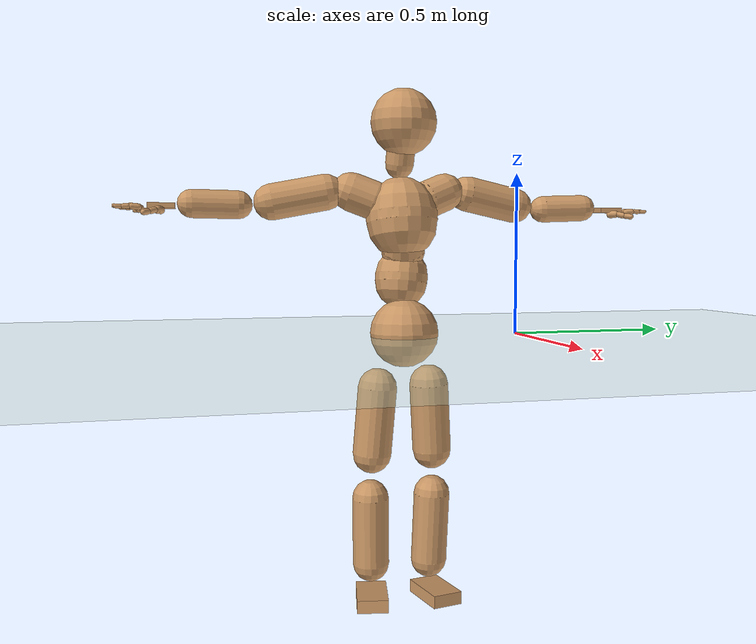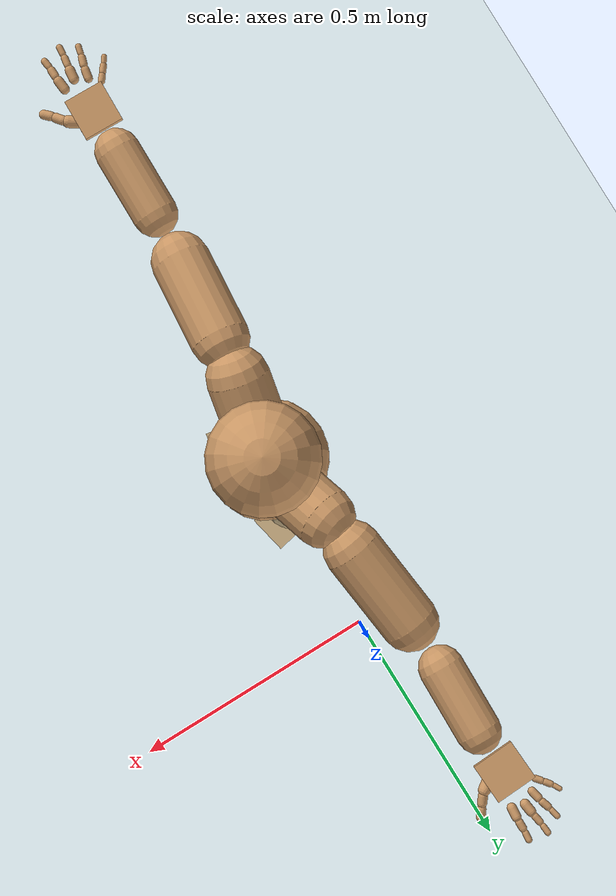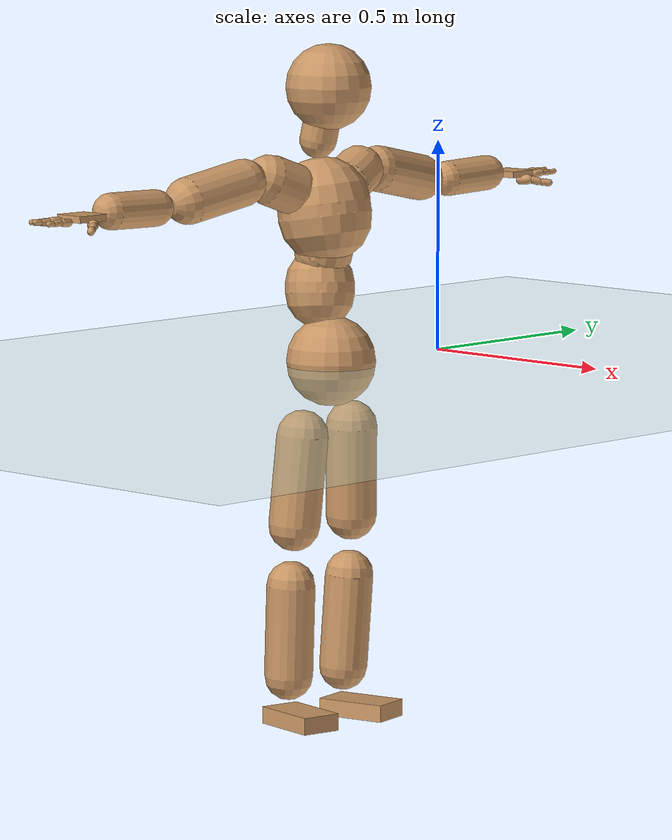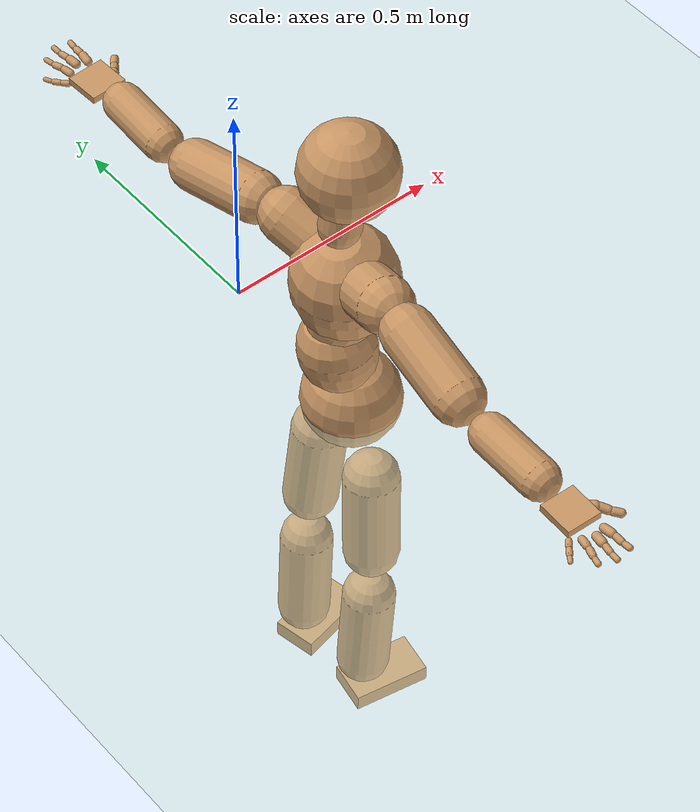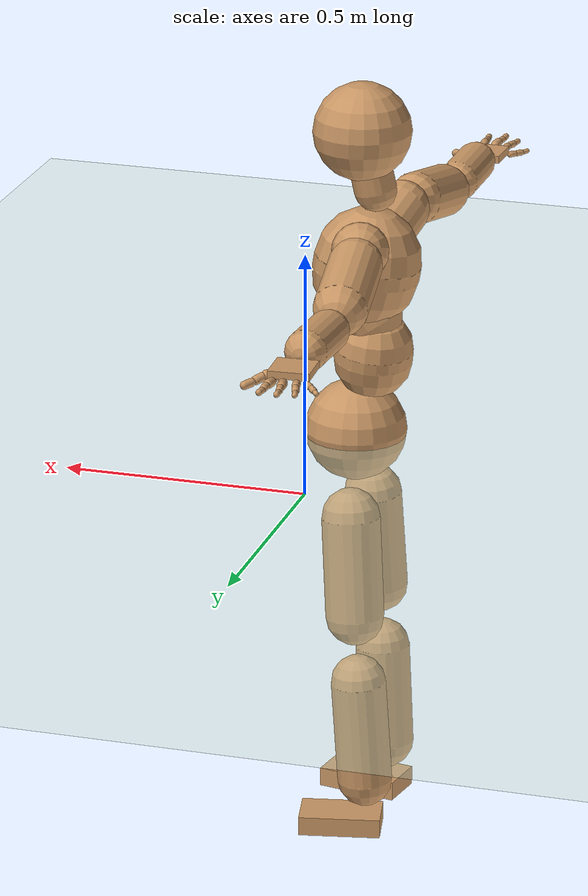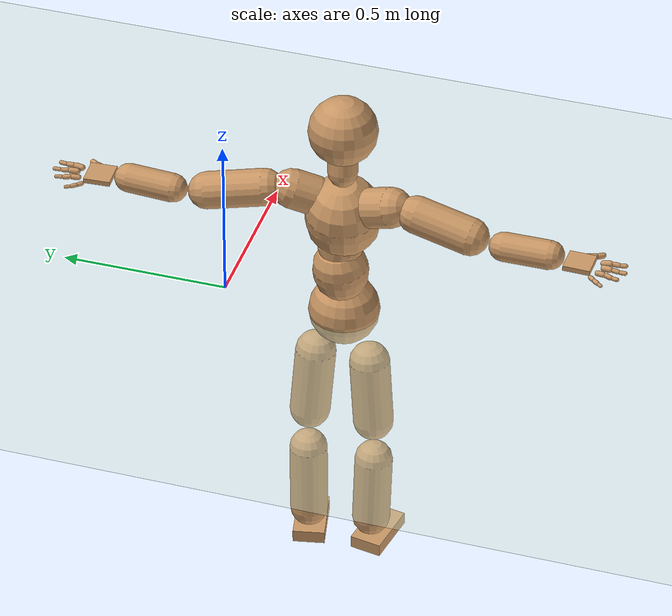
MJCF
<mujoco model="humanoid">
  <compiler coordinate="local" angle="radian"/>
  <default>
    <joint damping="0.0" armature="0.01" stiffness="0.0" limited="true"/>
    <geom conaffinity="1" condim="3" contype="7" margin="0.001" rgba="0.8 0.6 .4 1"/>
  </default>
  <asset>
    <texture type="skybox" builtin="gradient" rgb1=".4 .5 .6" rgb2="0 0 0" width="100" height="100"/>
    <texture builtin="flat" height="1278" mark="cross" markrgb="1 1 1" name="texgeom" random="0.01" rgb1="0.8 0.6 0.4" rgb2="0.8 0.6 0.4" type="cube" width="127"/>
    <texture builtin="checker" height="100" name="texplane" rgb1="0 0 0" rgb2="0.8 0.8 0.8" type="2d" width="100"/>
    <material name="MatPlane" reflectance="0.5" shininess="1" specular="1" texrepeat="60 60" texture="texplane"/>
    <material name="geom" texture="texgeom" texuniform="true"/>
  </asset>
  <worldbody>
    <light cutoff="100" diffuse="1 1 1" dir="-0 0 -1.3" directional="true" exponent="1" pos="0 0 1.3" specular=".1 .1 .1"/>
    <geom conaffinity="1" condim="3" name="floor" pos="0 0 0" rgba="0.8 0.9 0.8 1" size="100 100 .2" type="plane" material="MatPlane"/>
    <body name="Pelvis" pos="0.0005 -0.365 0.0089">
      <freejoint name="Pelvis"/>
      <geom type="sphere" contype="1" conaffinity="1" density="500" size="0.1054" pos="0.0000 0.0000 0.0000" name="Pelvis"/>
      <body name="L_Hip" pos="-0.0092 0.078 -0.092">
        <joint name="L_Hip_x" type="hinge" pos="0 0 0" axis="1 0 0" stiffness="800" damping="80" armature="0.02" range="-180.0000 180.0000"/>
        <joint name="L_Hip_y" type="hinge" pos="0 0 0" axis="0 1 0" stiffness="800" damping="80" armature="0.02" range="-180.0000 180.0000"/>
        <joint name="L_Hip_z" type="hinge" pos="0 0 0" axis="0 0 1" stiffness="800" damping="80" armature="0.02" range="-180.0000 180.0000"/>
        <geom type="capsule" contype="1" conaffinity="1" density="500" fromto="-0.0046 0.0046 -0.0709 -0.0184 0.0183 -0.2837" size="0.0604" name="L_Hip"/>
        <body name="L_Knee" pos="-0.0229 0.0229 -0.3546">
          <joint name="L_Knee_x" type="hinge" pos="0 0 0" axis="1 0 0" stiffness="800" damping="80" armature="0.02" range="-180.0000 180.0000"/>
          <joint name="L_Knee_y" type="hinge" pos="0 0 0" axis="0 1 0" stiffness="800" damping="80" armature="0.02" range="-180.0000 180.0000"/>
          <joint name="L_Knee_z" type="hinge" pos="0 0 0" axis="0 0 1" stiffness="800" damping="80" armature="0.02" range="-180.0000 180.0000"/>
          <geom type="capsule" contype="1" conaffinity="1" density="500" fromto="-0.0045 -0.0020 -0.0738 -0.0179 -0.0081 -0.2952" size="0.057" name="L_Knee"/>
          <body name="L_Ankle" pos="-0.0224 -0.0101 -0.369">
            <joint name="L_Ankle_x" type="hinge" pos="0 0 0" axis="1 0 0" stiffness="800" damping="80" armature="0.02" range="-180.0000 180.0000"/>
            <joint name="L_Ankle_y" type="hinge" pos="0 0 0" axis="0 1 0" stiffness="800" damping="80" armature="0.02" range="-180.0000 180.0000"/>
            <joint name="L_Ankle_z" type="hinge" pos="0 0 0" axis="0 0 1" stiffness="800" damping="80" armature="0.02" range="-180.0000 180.0000"/>
            <geom type="box" contype="1" conaffinity="1" density="500" pos="0.0535 0.0110 -0.0205" size="0.085 0.0482 0.02" quat="0.9948 0.0000 0.0000 0.1016" name="L_Ankle"/>
            <body name="L_Toe" pos="0.1071 0.0221 -0.041">
              <joint name="L_Toe_x" type="hinge" pos="0 0 0" axis="1 0 0" stiffness="500" damping="50" armature="0.02" range="-180.0000 180.0000"/>
              <joint name="L_Toe_y" type="hinge" pos="0 0 0" axis="0 1 0" stiffness="500" damping="50" armature="0.02" range="-180.0000 180.0000"/>
              <joint name="L_Toe_z" type="hinge" pos="0 0 0" axis="0 0 1" stiffness="500" damping="50" armature="0.02" range="-180.0000 180.0000"/>
              <geom type="box" contype="1" conaffinity="1" density="500" pos="0.0000 0.0000 0.0212" size="0.0009 0.0024 0.001" quat="0.9941 0.0000 0.0000 0.1085" name="L_Toe"/>
            </body>
          </body>
        </body>
      </body>
      <body name="R_Hip" pos="-0.01 -0.0767 -0.0984">
        <joint name="R_Hip_x" type="hinge" pos="0 0 0" axis="1 0 0" stiffness="800" damping="80" armature="0.02" range="-180.0000 180.0000"/>
        <joint name="R_Hip_y" type="hinge" pos="0 0 0" axis="0 1 0" stiffness="800" damping="80" armature="0.02" range="-180.0000 180.0000"/>
        <joint name="R_Hip_z" type="hinge" pos="0 0 0" axis="0 0 1" stiffness="800" damping="80" armature="0.02" range="-180.0000 180.0000"/>
        <geom type="capsule" contype="1" conaffinity="1" density="500" fromto="-0.0034 -0.0054 -0.0701 -0.0137 -0.0218 -0.2804" size="0.0602" name="R_Hip"/>
        <body name="R_Knee" pos="-0.0171 -0.0272 -0.3505">
          <joint name="R_Knee_x" type="hinge" pos="0 0 0" axis="1 0 0" stiffness="800" damping="80" armature="0.02" range="-180.0000 180.0000"/>
          <joint name="R_Knee_y" type="hinge" pos="0 0 0" axis="0 1 0" stiffness="800" damping="80" armature="0.02" range="-180.0000 180.0000"/>
          <joint name="R_Knee_z" type="hinge" pos="0 0 0" axis="0 0 1" stiffness="800" damping="80" armature="0.02" range="-180.0000 180.0000"/>
          <geom type="capsule" contype="1" conaffinity="1" density="500" fromto="-0.0038 0.0011 -0.0720 -0.0150 0.0043 -0.2881" size="0.057" name="R_Knee"/>
          <body name="R_Ankle" pos="-0.0188 0.0054 -0.3602">
            <joint name="R_Ankle_x" type="hinge" pos="0 0 0" axis="1 0 0" stiffness="800" damping="80" armature="0.02" range="-180.0000 180.0000"/>
            <joint name="R_Ankle_y" type="hinge" pos="0 0 0" axis="0 1 0" stiffness="800" damping="80" armature="0.02" range="-180.0000 180.0000"/>
            <joint name="R_Ankle_z" type="hinge" pos="0 0 0" axis="0 0 1" stiffness="800" damping="80" armature="0.02" range="-180.0000 180.0000"/>
            <geom type="box" contype="1" conaffinity="1" density="500" pos="0.0504 -0.0090 -0.0223" size="0.085 0.0482 0.02" quat="0.9961 0.0000 0.0000 -0.0882" name="R_Ankle"/>
            <body name="R_Toe" pos="0.1008 -0.018 -0.0445">
              <joint name="R_Toe_x" type="hinge" pos="0 0 0" axis="1 0 0" stiffness="500" damping="50" armature="0.02" range="-180.0000 180.0000"/>
              <joint name="R_Toe_y" type="hinge" pos="0 0 0" axis="0 1 0" stiffness="500" damping="50" armature="0.02" range="-180.0000 180.0000"/>
              <joint name="R_Toe_z" type="hinge" pos="0 0 0" axis="0 0 1" stiffness="500" damping="50" armature="0.02" range="-180.0000 180.0000"/>
              <geom type="box" contype="1" conaffinity="1" density="500" pos="0.0000 0.0000 0.0230" size="0.0009 0.0024 0.001" quat="0.9970 0.0000 0.0000 -0.0770" name="R_Toe"/>
            </body>
          </body>
        </body>
      </body>
      <body name="Torso" pos="-0.03 -0.0059 0.1063">
        <joint name="Torso_x" type="hinge" pos="0 0 0" axis="1 0 0" stiffness="1000" damping="100" armature="0.02" range="-180.0000 180.0000"/>
        <joint name="Torso_y" type="hinge" pos="0 0 0" axis="0 1 0" stiffness="1000" damping="100" armature="0.02" range="-180.0000 180.0000"/>
        <joint name="Torso_z" type="hinge" pos="0 0 0" axis="0 0 1" stiffness="1000" damping="100" armature="0.02" range="-180.0000 180.0000"/>
        <geom type="capsule" contype="1" conaffinity="1" density="500" fromto="-0.0076 0.0073 0.0736 -0.0051 0.0049 0.0491" size="0.0811" name="Torso"/>
        <body name="Spine" pos="-0.0127 0.0122 0.1227">
          <joint name="Spine_x" type="hinge" pos="0 0 0" axis="1 0 0" stiffness="1000" damping="100" armature="0.02" range="-180.0000 180.0000"/>
          <joint name="Spine_y" type="hinge" pos="0 0 0" axis="0 1 0" stiffness="1000" damping="100" armature="0.02" range="-180.0000 180.0000"/>
          <joint name="Spine_z" type="hinge" pos="0 0 0" axis="0 0 1" stiffness="1000" damping="100" armature="0.02" range="-180.0000 180.0000"/>
          <geom type="capsule" contype="1" conaffinity="1" density="500" fromto="0.0203 -0.0038 0.0296 0.0135 -0.0026 0.0197" size="0.067" name="Spine"/>
          <body name="Chest" pos="0.0338 -0.0064 0.0493">
            <joint name="Chest_x" type="hinge" pos="0 0 0" axis="1 0 0" stiffness="1000" damping="100" armature="0.02" range="-180.0000 180.0000"/>
            <joint name="Chest_y" type="hinge" pos="0 0 0" axis="0 1 0" stiffness="1000" damping="100" armature="0.02" range="-180.0000 180.0000"/>
            <joint name="Chest_z" type="hinge" pos="0 0 0" axis="0 0 1" stiffness="1000" damping="100" armature="0.02" range="-180.0000 180.0000"/>
            <geom type="capsule" contype="1" conaffinity="1" density="500" fromto="-0.0136 -0.0021 0.0883 -0.0091 -0.0014 0.0589" size="0.1099" name="Chest"/>
            <body name="Neck" pos="-0.0342 -0.0067 0.2046">
              <joint name="Neck_x" type="hinge" pos="0 0 0" axis="1 0 0" stiffness="500" damping="50" armature="0.02" range="-180.0000 180.0000"/>
              <joint name="Neck_y" type="hinge" pos="0 0 0" axis="0 1 0" stiffness="500" damping="50" armature="0.02" range="-180.0000 180.0000"/>
              <joint name="Neck_z" type="hinge" pos="0 0 0" axis="0 0 1" stiffness="500" damping="50" armature="0.02" range="-180.0000 180.0000"/>
              <geom type="capsule" contype="1" conaffinity="1" density="500" fromto="0.0065 0.0018 0.0309 0.0260 0.0074 0.1237" size="0.0435" name="Neck"/>
              <body name="Head" pos="0.0325 0.0092 0.1547">
                <joint name="Head_x" type="hinge" pos="0 0 0" axis="1 0 0" stiffness="500" damping="50" armature="0.02" range="-180.0000 180.0000"/>
                <joint name="Head_y" type="hinge" pos="0 0 0" axis="0 1 0" stiffness="500" damping="50" armature="0.02" range="-180.0000 180.0000"/>
                <joint name="Head_z" type="hinge" pos="0 0 0" axis="0 0 1" stiffness="500" damping="50" armature="0.02" range="-180.0000 180.0000"/>
                <geom type="sphere" contype="1" conaffinity="1" density="500" size="0.1006" pos="0.0000 0.0000 0.0000" name="Head"/>
              </body>
            </body>
            <body name="L_Thorax" pos="-0.0131 0.0585 0.1206">
              <joint name="L_Thorax_x" type="hinge" pos="0 0 0" axis="1 0 0" stiffness="500" damping="50" armature="0.02" range="-180.0000 180.0000"/>
              <joint name="L_Thorax_y" type="hinge" pos="0 0 0" axis="0 1 0" stiffness="500" damping="50" armature="0.02" range="-180.0000 180.0000"/>
              <joint name="L_Thorax_z" type="hinge" pos="0 0 0" axis="0 0 1" stiffness="500" damping="50" armature="0.02" range="-180.0000 180.0000"/>
              <geom type="capsule" contype="1" conaffinity="1" density="500" fromto="-0.0064 0.0209 0.0085 -0.0255 0.0837 0.0340" size="0.0581" name="L_Thorax"/>
              <body name="L_Shoulder" pos="-0.0319 0.1047 0.0425">
                <joint name="L_Shoulder_x" type="hinge" pos="0 0 0" axis="1 0 0" stiffness="500" damping="50" armature="0.02" range="-180.0000 180.0000"/>
                <joint name="L_Shoulder_y" type="hinge" pos="0 0 0" axis="0 1 0" stiffness="500" damping="50" armature="0.02" range="-180.0000 180.0000"/>
                <joint name="L_Shoulder_z" type="hinge" pos="0 0 0" axis="0 0 1" stiffness="500" damping="50" armature="0.02" range="-180.0000 180.0000"/>
                <geom type="capsule" contype="1" conaffinity="1" density="500" fromto="-0.0063 0.0560 -0.0115 -0.0252 0.2241 -0.0458" size="0.0546" name="L_Shoulder"/>
                <body name="L_Elbow" pos="-0.0315 0.2801 -0.0573">
                  <joint name="L_Elbow_x" type="hinge" pos="0 0 0" axis="1 0 0" stiffness="500" damping="50" armature="0.02" range="-720.0000 720.0000"/>
                  <joint name="L_Elbow_y" type="hinge" pos="0 0 0" axis="0 1 0" stiffness="500" damping="50" armature="0.02" range="-720.0000 720.0000"/>
                  <joint name="L_Elbow_z" type="hinge" pos="0 0 0" axis="0 0 1" stiffness="500" damping="50" armature="0.02" range="-720.0000 720.0000"/>
                  <geom type="capsule" contype="1" conaffinity="1" density="500" fromto="0.0011 0.0449 0.0016 0.0046 0.1794 0.0065" size="0.0422" name="L_Elbow"/>
                  <body name="L_Wrist" pos="0.0057 0.2243 0.0081">
                    <joint name="L_Wrist_x" type="hinge" pos="0 0 0" axis="1 0 0" stiffness="300" damping="30" armature="0.02" range="-180.0000 180.0000"/>
                    <joint name="L_Wrist_y" type="hinge" pos="0 0 0" axis="0 1 0" stiffness="300" damping="30" armature="0.02" range="-180.0000 180.0000"/>
                    <joint name="L_Wrist_z" type="hinge" pos="0 0 0" axis="0 0 1" stiffness="300" damping="30" armature="0.02" range="-180.0000 180.0000"/>
                    <geom type="box" contype="1" conaffinity="1" density="500" pos="-0.0022 0.0425 -0.0085" size="0.0393 0.0409 0.0075" quat="0.7250 0.0000 0.0000 -0.6887" name="L_Wrist"/>
                    <body name="L_Index1" pos="0.0205 0.1 -0.0145">
                      <joint name="L_Index1_x" type="hinge" pos="0 0 0" axis="1 0 0" stiffness="100" damping="10" armature="0.02" range="-180.0000 180.0000"/>
                      <joint name="L_Index1_y" type="hinge" pos="0 0 0" axis="0 1 0" stiffness="100" damping="10" armature="0.02" range="-180.0000 180.0000"/>
                      <joint name="L_Index1_z" type="hinge" pos="0 0 0" axis="0 0 1" stiffness="100" damping="10" armature="0.02" range="-180.0000 180.0000"/>
                      <geom type="capsule" contype="1" conaffinity="1" density="500" fromto="0.0005 0.0062 0.0006 0.0021 0.0249 0.0025" size="0.0091" name="L_Index1"/>
                      <body name="L_Index2" pos="0.0026 0.0311 0.0031">
                        <joint name="L_Index2_x" type="hinge" pos="0 0 0" axis="1 0 0" stiffness="100" damping="10" armature="0.02" range="-180.0000 180.0000"/>
                        <joint name="L_Index2_y" type="hinge" pos="0 0 0" axis="0 1 0" stiffness="100" damping="10" armature="0.02" range="-180.0000 180.0000"/>
                        <joint name="L_Index2_z" type="hinge" pos="0 0 0" axis="0 0 1" stiffness="100" damping="10" armature="0.02" range="-180.0000 180.0000"/>
                        <geom type="capsule" contype="1" conaffinity="1" density="500" fromto="0.0001 0.0044 -0.0003 0.0003 0.0175 -0.0011" size="0.0075" name="L_Index2"/>
                        <body name="L_Index3" pos="0.0003 0.0219 -0.0013">
                          <joint name="L_Index3_x" type="hinge" pos="0 0 0" axis="1 0 0" stiffness="100" damping="10" armature="0.02" range="-180.0000 180.0000"/>
                          <joint name="L_Index3_y" type="hinge" pos="0 0 0" axis="0 1 0" stiffness="100" damping="10" armature="0.02" range="-180.0000 180.0000"/>
                          <joint name="L_Index3_z" type="hinge" pos="0 0 0" axis="0 0 1" stiffness="100" damping="10" armature="0.02" range="-180.0000 180.0000"/>
                          <geom type="capsule" contype="1" conaffinity="1" density="500" fromto="0.0005 0.0048 0.0001 0.0019 0.0191 0.0005" size="0.0062" name="L_Index3"/>
                        </body>
                      </body>
                    </body>
                    <body name="L_Middle1" pos="-0.0024 0.1069 -0.012">
                      <joint name="L_Middle1_x" type="hinge" pos="0 0 0" axis="1 0 0" stiffness="100" damping="10" armature="0.02" range="-180.0000 180.0000"/>
                      <joint name="L_Middle1_y" type="hinge" pos="0 0 0" axis="0 1 0" stiffness="100" damping="10" armature="0.02" range="-180.0000 180.0000"/>
                      <joint name="L_Middle1_z" type="hinge" pos="0 0 0" axis="0 0 1" stiffness="100" damping="10" armature="0.02" range="-180.0000 180.0000"/>
                      <geom type="capsule" contype="1" conaffinity="1" density="500" fromto="-0.0007 0.0059 0.0003 -0.0029 0.0235 0.0013" size="0.0093" name="L_Middle1"/>
                      <body name="L_Middle2" pos="-0.0037 0.0294 0.0016">
                        <joint name="L_Middle2_x" type="hinge" pos="0 0 0" axis="1 0 0" stiffness="100" damping="10" armature="0.02" range="-180.0000 180.0000"/>
                        <joint name="L_Middle2_y" type="hinge" pos="0 0 0" axis="0 1 0" stiffness="100" damping="10" armature="0.02" range="-180.0000 180.0000"/>
                        <joint name="L_Middle2_z" type="hinge" pos="0 0 0" axis="0 0 1" stiffness="100" damping="10" armature="0.02" range="-180.0000 180.0000"/>
                        <geom type="capsule" contype="1" conaffinity="1" density="500" fromto="-0.0007 0.0046 -0.0001 -0.0029 0.0182 -0.0005" size="0.0069" name="L_Middle2"/>
                        <body name="L_Middle3" pos="-0.0037 0.0228 -0.0007">
                          <joint name="L_Middle3_x" type="hinge" pos="0 0 0" axis="1 0 0" stiffness="100" damping="10" armature="0.02" range="-180.0000 180.0000"/>
                          <joint name="L_Middle3_y" type="hinge" pos="0 0 0" axis="0 1 0" stiffness="100" damping="10" armature="0.02" range="-180.0000 180.0000"/>
                          <joint name="L_Middle3_z" type="hinge" pos="0 0 0" axis="0 0 1" stiffness="100" damping="10" armature="0.02" range="-180.0000 180.0000"/>
                          <geom type="capsule" contype="1" conaffinity="1" density="500" fromto="-0.0003 0.0050 0.0003 -0.0013 0.0198 0.0011" size="0.0059" name="L_Middle3"/>
                        </body>
                      </body>
                    </body>
                    <body name="L_Pinky1" pos="-0.0414 0.0819 -0.0204">
                      <joint name="L_Pinky1_x" type="hinge" pos="0 0 0" axis="1 0 0" stiffness="100" damping="10" armature="0.02" range="-180.0000 180.0000"/>
                      <joint name="L_Pinky1_y" type="hinge" pos="0 0 0" axis="0 1 0" stiffness="100" damping="10" armature="0.02" range="-180.0000 180.0000"/>
                      <joint name="L_Pinky1_z" type="hinge" pos="0 0 0" axis="0 0 1" stiffness="100" damping="10" armature="0.02" range="-180.0000 180.0000"/>
                      <geom type="capsule" contype="1" conaffinity="1" density="500" fromto="-0.0024 0.0029 -0.0001 -0.0095 0.0116 -0.0005" size="0.0066" name="L_Pinky1"/>
                      <body name="L_Pinky2" pos="-0.0118 0.0145 -0.0006">
                        <joint name="L_Pinky2_x" type="hinge" pos="0 0 0" axis="1 0 0" stiffness="100" damping="10" armature="0.02" range="-180.0000 180.0000"/>
                        <joint name="L_Pinky2_y" type="hinge" pos="0 0 0" axis="0 1 0" stiffness="100" damping="10" armature="0.02" range="-180.0000 180.0000"/>
                        <joint name="L_Pinky2_z" type="hinge" pos="0 0 0" axis="0 0 1" stiffness="100" damping="10" armature="0.02" range="-180.0000 180.0000"/>
                        <geom type="capsule" contype="1" conaffinity="1" density="500" fromto="-0.0023 0.0029 -0.0002 -0.0091 0.0118 -0.0008" size="0.0064" name="L_Pinky2"/>
                        <body name="L_Pinky3" pos="-0.0114 0.0147 -0.001">
                          <joint name="L_Pinky3_x" type="hinge" pos="0 0 0" axis="1 0 0" stiffness="100" damping="10" armature="0.02" range="-180.0000 180.0000"/>
                          <joint name="L_Pinky3_y" type="hinge" pos="0 0 0" axis="0 1 0" stiffness="100" damping="10" armature="0.02" range="-180.0000 180.0000"/>
                          <joint name="L_Pinky3_z" type="hinge" pos="0 0 0" axis="0 0 1" stiffness="100" damping="10" armature="0.02" range="-180.0000 180.0000"/>
                          <geom type="capsule" contype="1" conaffinity="1" density="500" fromto="-0.0019 0.0033 0.0002 -0.0075 0.0134 0.0008" size="0.0049" name="L_Pinky3"/>
                        </body>
                      </body>
                    </body>
                    <body name="L_Ring1" pos="-0.0255 0.095 -0.0149">
                      <joint name="L_Ring1_x" type="hinge" pos="0 0 0" axis="1 0 0" stiffness="100" damping="10" armature="0.02" range="-180.0000 180.0000"/>
                      <joint name="L_Ring1_y" type="hinge" pos="0 0 0" axis="0 1 0" stiffness="100" damping="10" armature="0.02" range="-180.0000 180.0000"/>
                      <joint name="L_Ring1_z" type="hinge" pos="0 0 0" axis="0 0 1" stiffness="100" damping="10" armature="0.02" range="-180.0000 180.0000"/>
                      <geom type="capsule" contype="1" conaffinity="1" density="500" fromto="-0.0010 0.0054 0.0004 -0.0042 0.0216 0.0015" size="0.008" name="L_Ring1"/>
                      <body name="L_Ring2" pos="-0.0052 0.027 0.0018">
                        <joint name="L_Ring2_x" type="hinge" pos="0 0 0" axis="1 0 0" stiffness="100" damping="10" armature="0.02" range="-180.0000 180.0000"/>
                        <joint name="L_Ring2_y" type="hinge" pos="0 0 0" axis="0 1 0" stiffness="100" damping="10" armature="0.02" range="-180.0000 180.0000"/>
                        <joint name="L_Ring2_z" type="hinge" pos="0 0 0" axis="0 0 1" stiffness="100" damping="10" armature="0.02" range="-180.0000 180.0000"/>
                        <geom type="capsule" contype="1" conaffinity="1" density="500" fromto="-0.0014 0.0044 -0.0002 -0.0056 0.0175 -0.0009" size="0.0073" name="L_Ring2"/>
                        <body name="L_Ring3" pos="-0.0069 0.0219 -0.0011">
                          <joint name="L_Ring3_x" type="hinge" pos="0 0 0" axis="1 0 0" stiffness="100" damping="10" armature="0.02" range="-180.0000 180.0000"/>
                          <joint name="L_Ring3_y" type="hinge" pos="0 0 0" axis="0 1 0" stiffness="100" damping="10" armature="0.02" range="-180.0000 180.0000"/>
                          <joint name="L_Ring3_z" type="hinge" pos="0 0 0" axis="0 0 1" stiffness="100" damping="10" armature="0.02" range="-180.0000 180.0000"/>
                          <geom type="capsule" contype="1" conaffinity="1" density="500" fromto="-0.0010 0.0048 0.0002 -0.0040 0.0191 0.0007" size="0.0056" name="L_Ring3"/>
                        </body>
                      </body>
                    </body>
                    <body name="L_Thumb1" pos="0.0271 0.0409 -0.023">
                      <joint name="L_Thumb1_x" type="hinge" pos="0 0 0" axis="1 0 0" stiffness="100" damping="10" armature="0.02" range="-180.0000 180.0000"/>
                      <joint name="L_Thumb1_y" type="hinge" pos="0 0 0" axis="0 1 0" stiffness="100" damping="10" armature="0.02" range="-180.0000 180.0000"/>
                      <joint name="L_Thumb1_z" type="hinge" pos="0 0 0" axis="0 0 1" stiffness="100" damping="10" armature="0.02" range="-180.0000 180.0000"/>
                      <geom type="capsule" contype="1" conaffinity="1" density="500" fromto="0.0048 0.0033 0.0002 0.0191 0.0132 0.0009" size="0.0118" name="L_Thumb1"/>
                      <body name="L_Thumb2" pos="0.0238 0.0165 0.0011">
                        <joint name="L_Thumb2_x" type="hinge" pos="0 0 0" axis="1 0 0" stiffness="100" damping="10" armature="0.02" range="-180.0000 180.0000"/>
                        <joint name="L_Thumb2_y" type="hinge" pos="0 0 0" axis="0 1 0" stiffness="100" damping="10" armature="0.02" range="-180.0000 180.0000"/>
                        <joint name="L_Thumb2_z" type="hinge" pos="0 0 0" axis="0 0 1" stiffness="100" damping="10" armature="0.02" range="-180.0000 180.0000"/>
                        <geom type="capsule" contype="1" conaffinity="1" density="500" fromto="0.0028 0.0039 -0.0012 0.0114 0.0157 -0.0047" size="0.0092" name="L_Thumb2"/>
                        <body name="L_Thumb3" pos="0.0142 0.0197 -0.0059">
                          <joint name="L_Thumb3_x" type="hinge" pos="0 0 0" axis="1 0 0" stiffness="100" damping="10" armature="0.02" range="-180.0000 180.0000"/>
                          <joint name="L_Thumb3_y" type="hinge" pos="0 0 0" axis="0 1 0" stiffness="100" damping="10" armature="0.02" range="-180.0000 180.0000"/>
                          <joint name="L_Thumb3_z" type="hinge" pos="0 0 0" axis="0 0 1" stiffness="100" damping="10" armature="0.02" range="-180.0000 180.0000"/>
                          <geom type="capsule" contype="1" conaffinity="1" density="500" fromto="0.0032 0.0043 -0.0008 0.0130 0.0173 -0.0031" size="0.0086" name="L_Thumb3"/>
                        </body>
                      </body>
                    </body>
                  </body>
                </body>
              </body>
            </body>
            <body name="R_Thorax" pos="-0.0209 -0.0623 0.1162">
              <joint name="R_Thorax_x" type="hinge" pos="0 0 0" axis="1 0 0" stiffness="500" damping="50" armature="0.02" range="-180.0000 180.0000"/>
              <joint name="R_Thorax_y" type="hinge" pos="0 0 0" axis="0 1 0" stiffness="500" damping="50" armature="0.02" range="-180.0000 180.0000"/>
              <joint name="R_Thorax_z" type="hinge" pos="0 0 0" axis="0 0 1" stiffness="500" damping="50" armature="0.02" range="-180.0000 180.0000"/>
              <geom type="capsule" contype="1" conaffinity="1" density="500" fromto="-0.0047 -0.0227 0.0089 -0.0188 -0.0910 0.0354" size="0.0592" name="R_Thorax"/>
              <body name="R_Shoulder" pos="-0.0235 -0.1137 0.0443">
                <joint name="R_Shoulder_x" type="hinge" pos="0 0 0" axis="1 0 0" stiffness="500" damping="50" armature="0.02" range="-180.0000 180.0000"/>
                <joint name="R_Shoulder_y" type="hinge" pos="0 0 0" axis="0 1 0" stiffness="500" damping="50" armature="0.02" range="-180.0000 180.0000"/>
                <joint name="R_Shoulder_z" type="hinge" pos="0 0 0" axis="0 0 1" stiffness="500" damping="50" armature="0.02" range="-180.0000 180.0000"/>
                <geom type="capsule" contype="1" conaffinity="1" density="500" fromto="-0.0048 -0.0537 -0.0103 -0.0194 -0.2150 -0.0410" size="0.055" name="R_Shoulder"/>
                <body name="R_Elbow" pos="-0.0242 -0.2687 -0.0513">
                  <joint name="R_Elbow_x" type="hinge" pos="0 0 0" axis="1 0 0" stiffness="500" damping="50" armature="0.02" range="-720.0000 720.0000"/>
                  <joint name="R_Elbow_y" type="hinge" pos="0 0 0" axis="0 1 0" stiffness="500" damping="50" armature="0.02" range="-720.0000 720.0000"/>
                  <joint name="R_Elbow_z" type="hinge" pos="0 0 0" axis="0 0 1" stiffness="500" damping="50" armature="0.02" range="-720.0000 720.0000"/>
                  <geom type="capsule" contype="1" conaffinity="1" density="500" fromto="-0.0008 -0.0449 0.0008 -0.0031 -0.1797 0.0030" size="0.0423" name="R_Elbow"/>
                  <body name="R_Wrist" pos="-0.0039 -0.2246 0.0038">
                    <joint name="R_Wrist_x" type="hinge" pos="0 0 0" axis="1 0 0" stiffness="300" damping="30" armature="0.02" range="-180.0000 180.0000"/>
                    <joint name="R_Wrist_y" type="hinge" pos="0 0 0" axis="0 1 0" stiffness="300" damping="30" armature="0.02" range="-180.0000 180.0000"/>
                    <joint name="R_Wrist_z" type="hinge" pos="0 0 0" axis="0 0 1" stiffness="300" damping="30" armature="0.02" range="-180.0000 180.0000"/>
                    <geom type="box" contype="1" conaffinity="1" density="500" pos="-0.0013 -0.0419 -0.0080" size="0.0393 0.0382 0.0078" quat="0.7180 0.0000 0.0000 0.6960" name="R_Wrist"/>
                    <body name="R_Index1" pos="0.0223 -0.0988 -0.0136">
                      <joint name="R_Index1_x" type="hinge" pos="0 0 0" axis="1 0 0" stiffness="100" damping="10" armature="0.02" range="-180.0000 180.0000"/>
                      <joint name="R_Index1_y" type="hinge" pos="0 0 0" axis="0 1 0" stiffness="100" damping="10" armature="0.02" range="-180.0000 180.0000"/>
                      <joint name="R_Index1_z" type="hinge" pos="0 0 0" axis="0 0 1" stiffness="100" damping="10" armature="0.02" range="-180.0000 180.0000"/>
                      <geom type="capsule" contype="1" conaffinity="1" density="500" fromto="0.0005 -0.0062 0.0006 0.0021 -0.0249 0.0025" size="0.0091" name="R_Index1"/>
                      <body name="R_Index2" pos="0.0026 -0.0311 0.0031">
                        <joint name="R_Index2_x" type="hinge" pos="0 0 0" axis="1 0 0" stiffness="100" damping="10" armature="0.02" range="-180.0000 180.0000"/>
                        <joint name="R_Index2_y" type="hinge" pos="0 0 0" axis="0 1 0" stiffness="100" damping="10" armature="0.02" range="-180.0000 180.0000"/>
                        <joint name="R_Index2_z" type="hinge" pos="0 0 0" axis="0 0 1" stiffness="100" damping="10" armature="0.02" range="-180.0000 180.0000"/>
                        <geom type="capsule" contype="1" conaffinity="1" density="500" fromto="0.0001 -0.0044 -0.0003 0.0003 -0.0175 -0.0011" size="0.0075" name="R_Index2"/>
                        <body name="R_Index3" pos="0.0003 -0.0219 -0.0013">
                          <joint name="R_Index3_x" type="hinge" pos="0 0 0" axis="1 0 0" stiffness="100" damping="10" armature="0.02" range="-180.0000 180.0000"/>
                          <joint name="R_Index3_y" type="hinge" pos="0 0 0" axis="0 1 0" stiffness="100" damping="10" armature="0.02" range="-180.0000 180.0000"/>
                          <joint name="R_Index3_z" type="hinge" pos="0 0 0" axis="0 0 1" stiffness="100" damping="10" armature="0.02" range="-180.0000 180.0000"/>
                          <geom type="capsule" contype="1" conaffinity="1" density="500" fromto="0.0005 -0.0040 0.0001 0.0019 -0.0159 0.0005" size="0.0065" name="R_Index3"/>
                        </body>
                      </body>
                    </body>
                    <body name="R_Middle1" pos="-0.0007 -0.1057 -0.011">
                      <joint name="R_Middle1_x" type="hinge" pos="0 0 0" axis="1 0 0" stiffness="100" damping="10" armature="0.02" range="-180.0000 180.0000"/>
                      <joint name="R_Middle1_y" type="hinge" pos="0 0 0" axis="0 1 0" stiffness="100" damping="10" armature="0.02" range="-180.0000 180.0000"/>
                      <joint name="R_Middle1_z" type="hinge" pos="0 0 0" axis="0 0 1" stiffness="100" damping="10" armature="0.02" range="-180.0000 180.0000"/>
                      <geom type="capsule" contype="1" conaffinity="1" density="500" fromto="-0.0007 -0.0059 0.0003 -0.0029 -0.0235 0.0013" size="0.0093" name="R_Middle1"/>
                      <body name="R_Middle2" pos="-0.0037 -0.0294 0.0016">
                        <joint name="R_Middle2_x" type="hinge" pos="0 0 0" axis="1 0 0" stiffness="100" damping="10" armature="0.02" range="-180.0000 180.0000"/>
                        <joint name="R_Middle2_y" type="hinge" pos="0 0 0" axis="0 1 0" stiffness="100" damping="10" armature="0.02" range="-180.0000 180.0000"/>
                        <joint name="R_Middle2_z" type="hinge" pos="0 0 0" axis="0 0 1" stiffness="100" damping="10" armature="0.02" range="-180.0000 180.0000"/>
                        <geom type="capsule" contype="1" conaffinity="1" density="500" fromto="-0.0007 -0.0046 -0.0001 -0.0029 -0.0182 -0.0005" size="0.0069" name="R_Middle2"/>
                        <body name="R_Middle3" pos="-0.0037 -0.0228 -0.0007">
                          <joint name="R_Middle3_x" type="hinge" pos="0 0 0" axis="1 0 0" stiffness="100" damping="10" armature="0.02" range="-180.0000 180.0000"/>
                          <joint name="R_Middle3_y" type="hinge" pos="0 0 0" axis="0 1 0" stiffness="100" damping="10" armature="0.02" range="-180.0000 180.0000"/>
                          <joint name="R_Middle3_z" type="hinge" pos="0 0 0" axis="0 0 1" stiffness="100" damping="10" armature="0.02" range="-180.0000 180.0000"/>
                          <geom type="capsule" contype="1" conaffinity="1" density="500" fromto="-0.0003 -0.0042 0.0003 -0.0013 -0.0166 0.0011" size="0.0062" name="R_Middle3"/>
                        </body>
                      </body>
                    </body>
                    <body name="R_Pinky1" pos="-0.0397 -0.0807 -0.0194">
                      <joint name="R_Pinky1_x" type="hinge" pos="0 0 0" axis="1 0 0" stiffness="100" damping="10" armature="0.02" range="-180.0000 180.0000"/>
                      <joint name="R_Pinky1_y" type="hinge" pos="0 0 0" axis="0 1 0" stiffness="100" damping="10" armature="0.02" range="-180.0000 180.0000"/>
                      <joint name="R_Pinky1_z" type="hinge" pos="0 0 0" axis="0 0 1" stiffness="100" damping="10" armature="0.02" range="-180.0000 180.0000"/>
                      <geom type="capsule" contype="1" conaffinity="1" density="500" fromto="-0.0024 -0.0029 -0.0001 -0.0095 -0.0116 -0.0005" size="0.0066" name="R_Pinky1"/>
                      <body name="R_Pinky2" pos="-0.0118 -0.0145 -0.0006">
                        <joint name="R_Pinky2_x" type="hinge" pos="0 0 0" axis="1 0 0" stiffness="100" damping="10" armature="0.02" range="-180.0000 180.0000"/>
                        <joint name="R_Pinky2_y" type="hinge" pos="0 0 0" axis="0 1 0" stiffness="100" damping="10" armature="0.02" range="-180.0000 180.0000"/>
                        <joint name="R_Pinky2_z" type="hinge" pos="0 0 0" axis="0 0 1" stiffness="100" damping="10" armature="0.02" range="-180.0000 180.0000"/>
                        <geom type="capsule" contype="1" conaffinity="1" density="500" fromto="-0.0023 -0.0029 -0.0002 -0.0091 -0.0118 -0.0008" size="0.0064" name="R_Pinky2"/>
                        <body name="R_Pinky3" pos="-0.0114 -0.0147 -0.001">
                          <joint name="R_Pinky3_x" type="hinge" pos="0 0 0" axis="1 0 0" stiffness="100" damping="10" armature="0.02" range="-180.0000 180.0000"/>
                          <joint name="R_Pinky3_y" type="hinge" pos="0 0 0" axis="0 1 0" stiffness="100" damping="10" armature="0.02" range="-180.0000 180.0000"/>
                          <joint name="R_Pinky3_z" type="hinge" pos="0 0 0" axis="0 0 1" stiffness="100" damping="10" armature="0.02" range="-180.0000 180.0000"/>
                          <geom type="capsule" contype="1" conaffinity="1" density="500" fromto="-0.0019 -0.0025 0.0002 -0.0075 -0.0102 0.0008" size="0.0051" name="R_Pinky3"/>
                        </body>
                      </body>
                    </body>
                    <body name="R_Ring1" pos="-0.0238 -0.0939 -0.014">
                      <joint name="R_Ring1_x" type="hinge" pos="0 0 0" axis="1 0 0" stiffness="100" damping="10" armature="0.02" range="-180.0000 180.0000"/>
                      <joint name="R_Ring1_y" type="hinge" pos="0 0 0" axis="0 1 0" stiffness="100" damping="10" armature="0.02" range="-180.0000 180.0000"/>
                      <joint name="R_Ring1_z" type="hinge" pos="0 0 0" axis="0 0 1" stiffness="100" damping="10" armature="0.02" range="-180.0000 180.0000"/>
                      <geom type="capsule" contype="1" conaffinity="1" density="500" fromto="-0.0010 -0.0054 0.0004 -0.0042 -0.0216 0.0015" size="0.008" name="R_Ring1"/>
                      <body name="R_Ring2" pos="-0.0052 -0.027 0.0018">
                        <joint name="R_Ring2_x" type="hinge" pos="0 0 0" axis="1 0 0" stiffness="100" damping="10" armature="0.02" range="-180.0000 180.0000"/>
                        <joint name="R_Ring2_y" type="hinge" pos="0 0 0" axis="0 1 0" stiffness="100" damping="10" armature="0.02" range="-180.0000 180.0000"/>
                        <joint name="R_Ring2_z" type="hinge" pos="0 0 0" axis="0 0 1" stiffness="100" damping="10" armature="0.02" range="-180.0000 180.0000"/>
                        <geom type="capsule" contype="1" conaffinity="1" density="500" fromto="-0.0014 -0.0044 -0.0002 -0.0056 -0.0175 -0.0009" size="0.0073" name="R_Ring2"/>
                        <body name="R_Ring3" pos="-0.0069 -0.0219 -0.0011">
                          <joint name="R_Ring3_x" type="hinge" pos="0 0 0" axis="1 0 0" stiffness="100" damping="10" armature="0.02" range="-180.0000 180.0000"/>
                          <joint name="R_Ring3_y" type="hinge" pos="0 0 0" axis="0 1 0" stiffness="100" damping="10" armature="0.02" range="-180.0000 180.0000"/>
                          <joint name="R_Ring3_z" type="hinge" pos="0 0 0" axis="0 0 1" stiffness="100" damping="10" armature="0.02" range="-180.0000 180.0000"/>
                          <geom type="capsule" contype="1" conaffinity="1" density="500" fromto="-0.0010 -0.0040 0.0002 -0.0040 -0.0159 0.0007" size="0.0059" name="R_Ring3"/>
                        </body>
                      </body>
                    </body>
                    <body name="R_Thumb1" pos="0.0289 -0.0398 -0.022">
                      <joint name="R_Thumb1_x" type="hinge" pos="0 0 0" axis="1 0 0" stiffness="100" damping="10" armature="0.02" range="-180.0000 180.0000"/>
                      <joint name="R_Thumb1_y" type="hinge" pos="0 0 0" axis="0 1 0" stiffness="100" damping="10" armature="0.02" range="-180.0000 180.0000"/>
                      <joint name="R_Thumb1_z" type="hinge" pos="0 0 0" axis="0 0 1" stiffness="100" damping="10" armature="0.02" range="-180.0000 180.0000"/>
                      <geom type="capsule" contype="1" conaffinity="1" density="500" fromto="0.0048 -0.0033 0.0002 0.0191 -0.0132 0.0009" size="0.0118" name="R_Thumb1"/>
                      <body name="R_Thumb2" pos="0.0238 -0.0165 0.0011">
                        <joint name="R_Thumb2_x" type="hinge" pos="0 0 0" axis="1 0 0" stiffness="100" damping="10" armature="0.02" range="-180.0000 180.0000"/>
                        <joint name="R_Thumb2_y" type="hinge" pos="0 0 0" axis="0 1 0" stiffness="100" damping="10" armature="0.02" range="-180.0000 180.0000"/>
                        <joint name="R_Thumb2_z" type="hinge" pos="0 0 0" axis="0 0 1" stiffness="100" damping="10" armature="0.02" range="-180.0000 180.0000"/>
                        <geom type="capsule" contype="1" conaffinity="1" density="500" fromto="0.0028 -0.0039 -0.0012 0.0114 -0.0157 -0.0047" size="0.0092" name="R_Thumb2"/>
                        <body name="R_Thumb3" pos="0.0142 -0.0197 -0.0059">
                          <joint name="R_Thumb3_x" type="hinge" pos="0 0 0" axis="1 0 0" stiffness="100" damping="10" armature="0.02" range="-180.0000 180.0000"/>
                          <joint name="R_Thumb3_y" type="hinge" pos="0 0 0" axis="0 1 0" stiffness="100" damping="10" armature="0.02" range="-180.0000 180.0000"/>
                          <joint name="R_Thumb3_z" type="hinge" pos="0 0 0" axis="0 0 1" stiffness="100" damping="10" armature="0.02" range="-180.0000 180.0000"/>
                          <geom type="capsule" contype="1" conaffinity="1" density="500" fromto="0.0032 -0.0035 -0.0008 0.0130 -0.0141 -0.0031" size="0.0088" name="R_Thumb3"/>
                        </body>
                      </body>
                    </body>
                  </body>
                </body>
              </body>
            </body>
          </body>
        </body>
      </body>
    </body>
  </worldbody>
  <actuator>
    <motor name="L_Hip_x" joint="L_Hip_x" gear="500"/>
    <motor name="L_Hip_y" joint="L_Hip_y" gear="500"/>
    <motor name="L_Hip_z" joint="L_Hip_z" gear="500"/>
    <motor name="L_Knee_x" joint="L_Knee_x" gear="500"/>
    <motor name="L_Knee_y" joint="L_Knee_y" gear="500"/>
    <motor name="L_Knee_z" joint="L_Knee_z" gear="500"/>
    <motor name="L_Ankle_x" joint="L_Ankle_x" gear="500"/>
    <motor name="L_Ankle_y" joint="L_Ankle_y" gear="500"/>
    <motor name="L_Ankle_z" joint="L_Ankle_z" gear="500"/>
    <motor name="L_Toe_x" joint="L_Toe_x" gear="500"/>
    <motor name="L_Toe_y" joint="L_Toe_y" gear="500"/>
    <motor name="L_Toe_z" joint="L_Toe_z" gear="500"/>
    <motor name="R_Hip_x" joint="R_Hip_x" gear="500"/>
    <motor name="R_Hip_y" joint="R_Hip_y" gear="500"/>
    <motor name="R_Hip_z" joint="R_Hip_z" gear="500"/>
    <motor name="R_Knee_x" joint="R_Knee_x" gear="500"/>
    <motor name="R_Knee_y" joint="R_Knee_y" gear="500"/>
    <motor name="R_Knee_z" joint="R_Knee_z" gear="500"/>
    <motor name="R_Ankle_x" joint="R_Ankle_x" gear="500"/>
    <motor name="R_Ankle_y" joint="R_Ankle_y" gear="500"/>
    <motor name="R_Ankle_z" joint="R_Ankle_z" gear="500"/>
    <motor name="R_Toe_x" joint="R_Toe_x" gear="500"/>
    <motor name="R_Toe_y" joint="R_Toe_y" gear="500"/>
    <motor name="R_Toe_z" joint="R_Toe_z" gear="500"/>
    <motor name="Torso_x" joint="Torso_x" gear="500"/>
    <motor name="Torso_y" joint="Torso_y" gear="500"/>
    <motor name="Torso_z" joint="Torso_z" gear="500"/>
    <motor name="Spine_x" joint="Spine_x" gear="500"/>
    <motor name="Spine_y" joint="Spine_y" gear="500"/>
    <motor name="Spine_z" joint="Spine_z" gear="500"/>
    <motor name="Chest_x" joint="Chest_x" gear="500"/>
    <motor name="Chest_y" joint="Chest_y" gear="500"/>
    <motor name="Chest_z" joint="Chest_z" gear="500"/>
    <motor name="Neck_x" joint="Neck_x" gear="500"/>
    <motor name="Neck_y" joint="Neck_y" gear="500"/>
    <motor name="Neck_z" joint="Neck_z" gear="500"/>
    <motor name="Head_x" joint="Head_x" gear="500"/>
    <motor name="Head_y" joint="Head_y" gear="500"/>
    <motor name="Head_z" joint="Head_z" gear="500"/>
    <motor name="L_Thorax_x" joint="L_Thorax_x" gear="500"/>
    <motor name="L_Thorax_y" joint="L_Thorax_y" gear="500"/>
    <motor name="L_Thorax_z" joint="L_Thorax_z" gear="500"/>
    <motor name="L_Shoulder_x" joint="L_Shoulder_x" gear="500"/>
    <motor name="L_Shoulder_y" joint="L_Shoulder_y" gear="500"/>
    <motor name="L_Shoulder_z" joint="L_Shoulder_z" gear="500"/>
    <motor name="L_Elbow_x" joint="L_Elbow_x" gear="500"/>
    <motor name="L_Elbow_y" joint="L_Elbow_y" gear="500"/>
    <motor name="L_Elbow_z" joint="L_Elbow_z" gear="500"/>
    <motor name="L_Wrist_x" joint="L_Wrist_x" gear="500"/>
    <motor name="L_Wrist_y" joint="L_Wrist_y" gear="500"/>
    <motor name="L_Wrist_z" joint="L_Wrist_z" gear="500"/>
    <motor name="L_Index1_x" joint="L_Index1_x" gear="500"/>
    <motor name="L_Index1_y" joint="L_Index1_y" gear="500"/>
    <motor name="L_Index1_z" joint="L_Index1_z" gear="500"/>
    <motor name="L_Index2_x" joint="L_Index2_x" gear="500"/>
    <motor name="L_Index2_y" joint="L_Index2_y" gear="500"/>
    <motor name="L_Index2_z" joint="L_Index2_z" gear="500"/>
    <motor name="L_Index3_x" joint="L_Index3_x" gear="500"/>
    <motor name="L_Index3_y" joint="L_Index3_y" gear="500"/>
    <motor name="L_Index3_z" joint="L_Index3_z" gear="500"/>
    <motor name="L_Middle1_x" joint="L_Middle1_x" gear="500"/>
    <motor name="L_Middle1_y" joint="L_Middle1_y" gear="500"/>
    <motor name="L_Middle1_z" joint="L_Middle1_z" gear="500"/>
    <motor name="L_Middle2_x" joint="L_Middle2_x" gear="500"/>
    <motor name="L_Middle2_y" joint="L_Middle2_y" gear="500"/>
    <motor name="L_Middle2_z" joint="L_Middle2_z" gear="500"/>
    <motor name="L_Middle3_x" joint="L_Middle3_x" gear="500"/>
    <motor name="L_Middle3_y" joint="L_Middle3_y" gear="500"/>
    <motor name="L_Middle3_z" joint="L_Middle3_z" gear="500"/>
    <motor name="L_Pinky1_x" joint="L_Pinky1_x" gear="500"/>
    <motor name="L_Pinky1_y" joint="L_Pinky1_y" gear="500"/>
    <motor name="L_Pinky1_z" joint="L_Pinky1_z" gear="500"/>
    <motor name="L_Pinky2_x" joint="L_Pinky2_x" gear="500"/>
    <motor name="L_Pinky2_y" joint="L_Pinky2_y" gear="500"/>
    <motor name="L_Pinky2_z" joint="L_Pinky2_z" gear="500"/>
    <motor name="L_Pinky3_x" joint="L_Pinky3_x" gear="500"/>
    <motor name="L_Pinky3_y" joint="L_Pinky3_y" gear="500"/>
    <motor name="L_Pinky3_z" joint="L_Pinky3_z" gear="500"/>
    <motor name="L_Ring1_x" joint="L_Ring1_x" gear="500"/>
    <motor name="L_Ring1_y" joint="L_Ring1_y" gear="500"/>
    <motor name="L_Ring1_z" joint="L_Ring1_z" gear="500"/>
    <motor name="L_Ring2_x" joint="L_Ring2_x" gear="500"/>
    <motor name="L_Ring2_y" joint="L_Ring2_y" gear="500"/>
    <motor name="L_Ring2_z" joint="L_Ring2_z" gear="500"/>
    <motor name="L_Ring3_x" joint="L_Ring3_x" gear="500"/>
    <motor name="L_Ring3_y" joint="L_Ring3_y" gear="500"/>
    <motor name="L_Ring3_z" joint="L_Ring3_z" gear="500"/>
    <motor name="L_Thumb1_x" joint="L_Thumb1_x" gear="500"/>
    <motor name="L_Thumb1_y" joint="L_Thumb1_y" gear="500"/>
    <motor name="L_Thumb1_z" joint="L_Thumb1_z" gear="500"/>
    <motor name="L_Thumb2_x" joint="L_Thumb2_x" gear="500"/>
    <motor name="L_Thumb2_y" joint="L_Thumb2_y" gear="500"/>
    <motor name="L_Thumb2_z" joint="L_Thumb2_z" gear="500"/>
    <motor name="L_Thumb3_x" joint="L_Thumb3_x" gear="500"/>
    <motor name="L_Thumb3_y" joint="L_Thumb3_y" gear="500"/>
    <motor name="L_Thumb3_z" joint="L_Thumb3_z" gear="500"/>
    <motor name="R_Thorax_x" joint="R_Thorax_x" gear="500"/>
    <motor name="R_Thorax_y" joint="R_Thorax_y" gear="500"/>
    <motor name="R_Thorax_z" joint="R_Thorax_z" gear="500"/>
    <motor name="R_Shoulder_x" joint="R_Shoulder_x" gear="500"/>
    <motor name="R_Shoulder_y" joint="R_Shoulder_y" gear="500"/>
    <motor name="R_Shoulder_z" joint="R_Shoulder_z" gear="500"/>
    <motor name="R_Elbow_x" joint="R_Elbow_x" gear="500"/>
    <motor name="R_Elbow_y" joint="R_Elbow_y" gear="500"/>
    <motor name="R_Elbow_z" joint="R_Elbow_z" gear="500"/>
    <motor name="R_Wrist_x" joint="R_Wrist_x" gear="500"/>
    <motor name="R_Wrist_y" joint="R_Wrist_y" gear="500"/>
    <motor name="R_Wrist_z" joint="R_Wrist_z" gear="500"/>
    <motor name="R_Index1_x" joint="R_Index1_x" gear="500"/>
    <motor name="R_Index1_y" joint="R_Index1_y" gear="500"/>
    <motor name="R_Index1_z" joint="R_Index1_z" gear="500"/>
    <motor name="R_Index2_x" joint="R_Index2_x" gear="500"/>
    <motor name="R_Index2_y" joint="R_Index2_y" gear="500"/>
    <motor name="R_Index2_z" joint="R_Index2_z" gear="500"/>
    <motor name="R_Index3_x" joint="R_Index3_x" gear="500"/>
    <motor name="R_Index3_y" joint="R_Index3_y" gear="500"/>
    <motor name="R_Index3_z" joint="R_Index3_z" gear="500"/>
    <motor name="R_Middle1_x" joint="R_Middle1_x" gear="500"/>
    <motor name="R_Middle1_y" joint="R_Middle1_y" gear="500"/>
    <motor name="R_Middle1_z" joint="R_Middle1_z" gear="500"/>
    <motor name="R_Middle2_x" joint="R_Middle2_x" gear="500"/>
    <motor name="R_Middle2_y" joint="R_Middle2_y" gear="500"/>
    <motor name="R_Middle2_z" joint="R_Middle2_z" gear="500"/>
    <motor name="R_Middle3_x" joint="R_Middle3_x" gear="500"/>
    <motor name="R_Middle3_y" joint="R_Middle3_y" gear="500"/>
    <motor name="R_Middle3_z" joint="R_Middle3_z" gear="500"/>
    <motor name="R_Pinky1_x" joint="R_Pinky1_x" gear="500"/>
    <motor name="R_Pinky1_y" joint="R_Pinky1_y" gear="500"/>
    <motor name="R_Pinky1_z" joint="R_Pinky1_z" gear="500"/>
    <motor name="R_Pinky2_x" joint="R_Pinky2_x" gear="500"/>
    <motor name="R_Pinky2_y" joint="R_Pinky2_y" gear="500"/>
    <motor name="R_Pinky2_z" joint="R_Pinky2_z" gear="500"/>
    <motor name="R_Pinky3_x" joint="R_Pinky3_x" gear="500"/>
    <motor name="R_Pinky3_y" joint="R_Pinky3_y" gear="500"/>
    <motor name="R_Pinky3_z" joint="R_Pinky3_z" gear="500"/>
    <motor name="R_Ring1_x" joint="R_Ring1_x" gear="500"/>
    <motor name="R_Ring1_y" joint="R_Ring1_y" gear="500"/>
    <motor name="R_Ring1_z" joint="R_Ring1_z" gear="500"/>
    <motor name="R_Ring2_x" joint="R_Ring2_x" gear="500"/>
    <motor name="R_Ring2_y" joint="R_Ring2_y" gear="500"/>
    <motor name="R_Ring2_z" joint="R_Ring2_z" gear="500"/>
    <motor name="R_Ring3_x" joint="R_Ring3_x" gear="500"/>
    <motor name="R_Ring3_y" joint="R_Ring3_y" gear="500"/>
    <motor name="R_Ring3_z" joint="R_Ring3_z" gear="500"/>
    <motor name="R_Thumb1_x" joint="R_Thumb1_x" gear="500"/>
    <motor name="R_Thumb1_y" joint="R_Thumb1_y" gear="500"/>
    <motor name="R_Thumb1_z" joint="R_Thumb1_z" gear="500"/>
    <motor name="R_Thumb2_x" joint="R_Thumb2_x" gear="500"/>
    <motor name="R_Thumb2_y" joint="R_Thumb2_y" gear="500"/>
    <motor name="R_Thumb2_z" joint="R_Thumb2_z" gear="500"/>
    <motor name="R_Thumb3_x" joint="R_Thumb3_x" gear="500"/>
    <motor name="R_Thumb3_y" joint="R_Thumb3_y" gear="500"/>
    <motor name="R_Thumb3_z" joint="R_Thumb3_z" gear="500"/>
  </actuator>
  <contact>
    <exclude body1="Torso" body2="Chest"/>
    <exclude body1="Head" body2="Chest"/>
    <exclude body1="R_Knee" body2="R_Toe"/>
    <exclude body1="R_Knee" body2="L_Ankle"/>
    <exclude body1="R_Knee" body2="L_Toe"/>
    <exclude body1="L_Knee" body2="L_Toe"/>
    <exclude body1="L_Knee" body2="R_Ankle"/>
    <exclude body1="L_Knee" body2="R_Toe"/>
    <exclude body1="L_Shoulder" body2="Chest"/>
    <exclude body1="R_Shoulder" body2="Chest"/>
  </contact>
  <sensor/>
  <size njmax="700" nconmax="700"/>
</mujoco>
